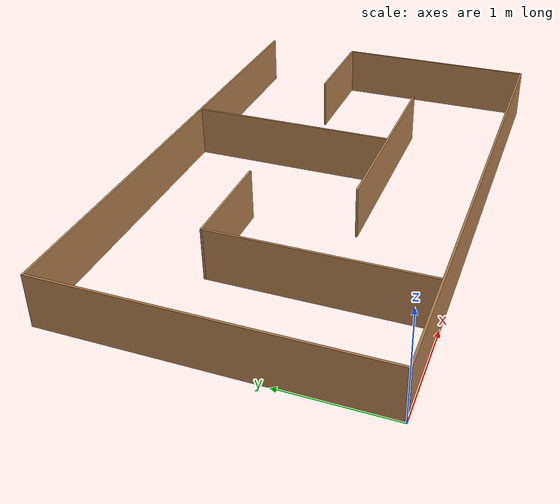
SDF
<?xml version='1.0'?>
<sdf version='1.6'>
  <model name='exp_05'>
    <pose frame=''>2.50094 1.49177 0 0 -0 0</pose>
    <link name='Wall_0'>
      <collision name='Wall_0_Collision'>
        <geometry>
          <box>
            <size>5 0.02 0.5</size>
          </box>
        </geometry>
        <pose frame=''>0 0 0.25 0 -0 0</pose>
      </collision>
      <visual name='Wall_0_Visual'>
        <pose frame=''>0 0 0.25 0 -0 0</pose>
        <geometry>
          <box>
            <size>5 0.02 0.5</size>
          </box>
        </geometry>
        <material>
          <script>
            <uri>file://media/materials/scripts/gazebo.material</uri>
            <name>Gazebo/Wood</name>
          </script>
          <ambient>1 1 1 1</ambient>
        </material>
        <meta>
          <layer>0</layer>
        </meta>
      </visual>
      <pose frame=''>-5.7e-05 -1.49 0 0 -0 -9.2e-05</pose>
    </link>
    <link name='Wall_10'>
      <collision name='Wall_10_Collision'>
        <geometry>
          <box>
            <size>1 0.02 0.5</size>
          </box>
        </geometry>
        <pose frame=''>0 0 0.25 0 -0 0</pose>
      </collision>
      <visual name='Wall_10_Visual'>
        <pose frame=''>0 0 0.25 0 -0 0</pose>
        <geometry>
          <box>
            <size>1 0.02 0.5</size>
          </box>
        </geometry>
        <material>
          <script>
            <uri>file://media/materials/scripts/gazebo.material</uri>
            <name>Gazebo/Wood</name>
          </script>
          <ambient>1 1 1 1</ambient>
        </material>
        <meta>
          <layer>0</layer>
        </meta>
      </visual>
      <pose frame=''>-1.01166 0.501118 0 0 -0 0</pose>
    </link>
    <link name='Wall_12'>
      <collision name='Wall_12_Collision'>
        <geometry>
          <box>
            <size>2 0.02 0.5</size>
          </box>
        </geometry>
        <pose frame=''>0 0 0.25 0 -0 0</pose>
      </collision>
      <visual name='Wall_12_Visual'>
        <pose frame=''>0 0 0.25 0 -0 0</pose>
        <geometry>
          <box>
            <size>2 0.02 0.5</size>
          </box>
        </geometry>
        <material>
          <script>
            <uri>file://media/materials/scripts/gazebo.material</uri>
            <name>Gazebo/Wood</name>
          </script>
          <ambient>1 1 1 1</ambient>
        </material>
        <meta>
          <layer>0</layer>
        </meta>
      </visual>
      <pose frame=''>0.492938 0.484925 0 0 -0 -1.5708</pose>
    </link>
    <link name='Wall_14'>
      <collision name='Wall_14_Collision'>
        <geometry>
          <box>
            <size>2 0.02 0.5</size>
          </box>
        </geometry>
        <pose frame=''>0 0 0.25 0 -0 0</pose>
      </collision>
      <visual name='Wall_14_Visual'>
        <pose frame=''>0 0 0.25 0 -0 0</pose>
        <geometry>
          <box>
            <size>2 0.02 0.5</size>
          </box>
        </geometry>
        <material>
          <script>
            <uri>file://media/materials/scripts/gazebo.material</uri>
            <name>Gazebo/Wood</name>
          </script>
          <ambient>1 1 1 1</ambient>
        </material>
        <meta>
          <layer>0</layer>
        </meta>
      </visual>
      <pose frame=''>0.499961 -0.505562 0 0 -0 0</pose>
    </link>
    <link name='Wall_16'>
      <collision name='Wall_16_Collision'>
        <geometry>
          <box>
            <size>1 0.02 0.5</size>
          </box>
        </geometry>
        <pose frame=''>0 0 0.25 0 -0 0</pose>
      </collision>
      <visual name='Wall_16_Visual'>
        <pose frame=''>0 0 0.25 0 -0 0</pose>
        <geometry>
          <box>
            <size>1 0.02 0.5</size>
          </box>
        </geometry>
        <material>
          <script>
            <uri>file://media/materials/scripts/gazebo.material</uri>
            <name>Gazebo/Wood</name>
          </script>
          <ambient>1 1 1 1</ambient>
        </material>
        <meta>
          <layer>0</layer>
        </meta>
      </visual>
      <pose frame=''>1.99983 0.489772 0 0 -0 3.14159</pose>
    </link>
    <link name='Wall_2'>
      <collision name='Wall_2_Collision'>
        <geometry>
          <box>
            <size>3 0.02 0.5</size>
          </box>
        </geometry>
        <pose frame=''>0 0 0.25 0 -0 0</pose>
      </collision>
      <visual name='Wall_2_Visual'>
        <pose frame=''>0 0 0.25 0 -0 0</pose>
        <geometry>
          <box>
            <size>3 0.02 0.5</size>
          </box>
        </geometry>
        <material>
          <script>
            <uri>file://media/materials/scripts/gazebo.material</uri>
            <name>Gazebo/Wood</name>
          </script>
          <ambient>1 1 1 1</ambient>
        </material>
        <meta>
          <layer>0</layer>
        </meta>
      </visual>
      <pose frame=''>-2.48994 0.000229 0 0 -0 1.5708</pose>
    </link>
    <link name='Wall_4'>
      <collision name='Wall_4_Collision'>
        <geometry>
          <box>
            <size>5 0.02 0.5</size>
          </box>
        </geometry>
        <pose frame=''>0 0 0.25 0 -0 0</pose>
      </collision>
      <visual name='Wall_4_Visual'>
        <pose frame=''>0 0 0.25 0 -0 0</pose>
        <geometry>
          <box>
            <size>5 0.02 0.5</size>
          </box>
        </geometry>
        <material>
          <script>
            <uri>file://media/materials/scripts/gazebo.material</uri>
            <name>Gazebo/Wood</name>
          </script>
          <ambient>1 1 1 1</ambient>
        </material>
        <meta>
          <layer>0</layer>
        </meta>
      </visual>
      <pose frame=''>5.7e-05 1.49023 0 0 -0 0</pose>
    </link>
    <link name='Wall_6'>
      <collision name='Wall_6_Collision'>
        <geometry>
          <box>
            <size>2 0.02 0.5</size>
          </box>
        </geometry>
        <pose frame=''>0 0 0.25 0 -0 0</pose>
      </collision>
      <visual name='Wall_6_Visual'>
        <pose frame=''>0 0 0.25 0 -0 0</pose>
        <geometry>
          <box>
            <size>2 0.02 0.5</size>
          </box>
        </geometry>
        <material>
          <script>
            <uri>file://media/materials/scripts/gazebo.material</uri>
            <name>Gazebo/Wood</name>
          </script>
          <ambient>1 1 1 1</ambient>
        </material>
        <meta>
          <layer>0</layer>
        </meta>
      </visual>
      <pose frame=''>2.48983 -0.500228 0 0 -0 1.5708</pose>
    </link>
    <link name='Wall_8'>
      <collision name='Wall_8_Collision'>
        <geometry>
          <box>
            <size>2 0.02 0.5</size>
          </box>
        </geometry>
        <pose frame=''>0 0 0.25 0 -0 0</pose>
      </collision>
      <visual name='Wall_8_Visual'>
        <pose frame=''>0 0 0.25 0 -0 0</pose>
        <geometry>
          <box>
            <size>2 0.02 0.5</size>
          </box>
        </geometry>
        <material>
          <script>
            <uri>file://media/materials/scripts/gazebo.material</uri>
            <name>Gazebo/Wood</name>
          </script>
          <ambient>1 1 1 1</ambient>
        </material>
        <meta>
          <layer>0</layer>
        </meta>
      </visual>
      <pose frame=''>-1.50166 -0.488882 0 0 -0 -1.5708</pose>
    </link>
    <static>1</static>
  </model>
</sdf>
